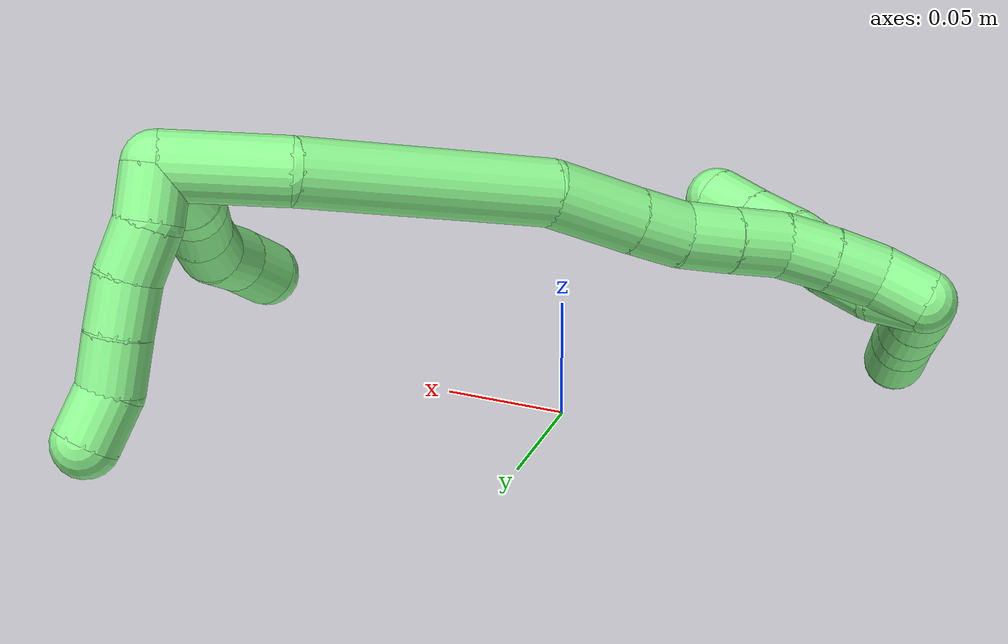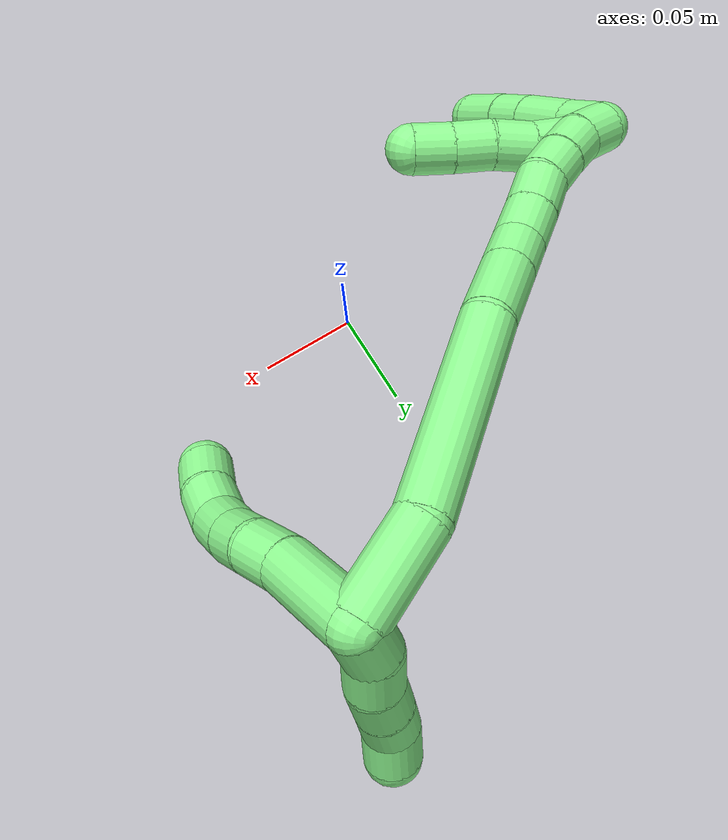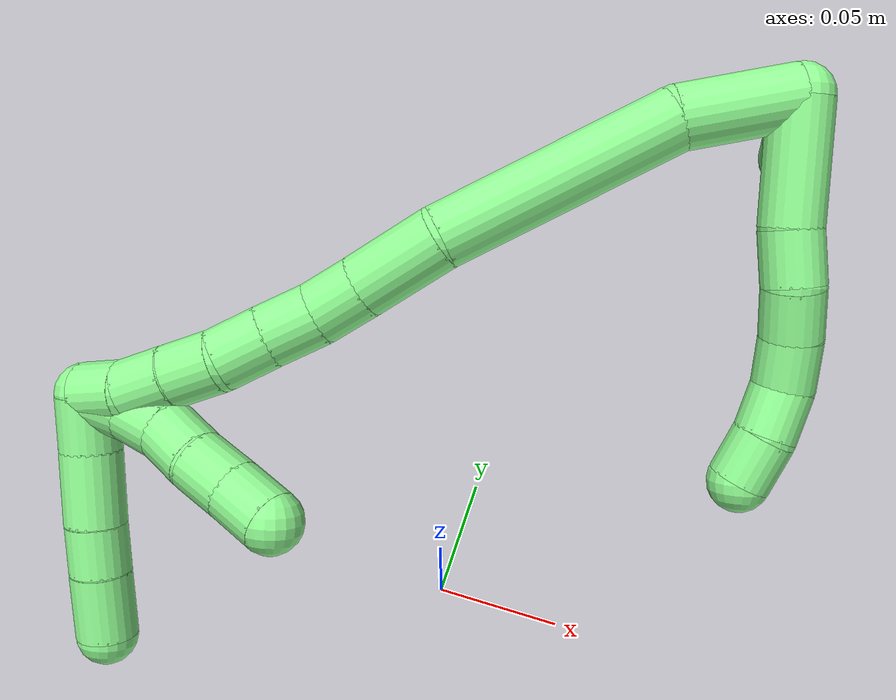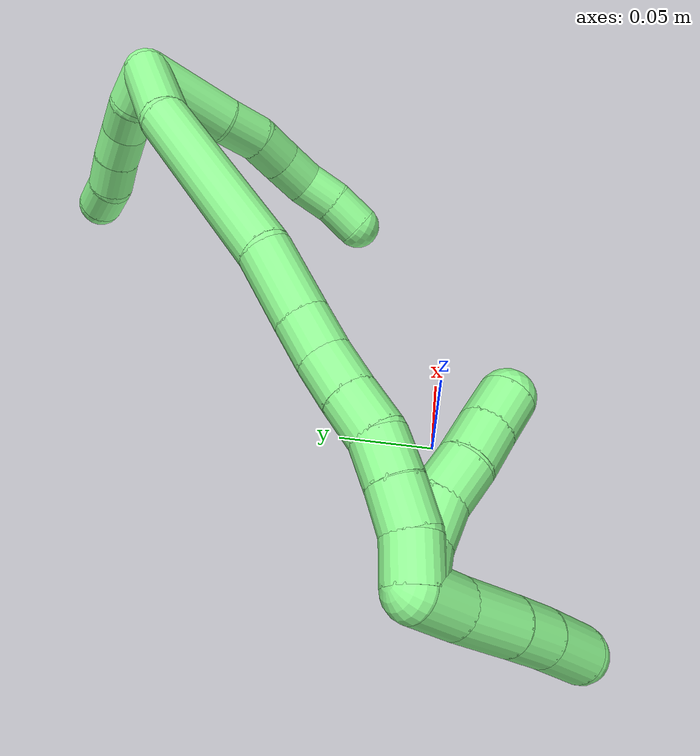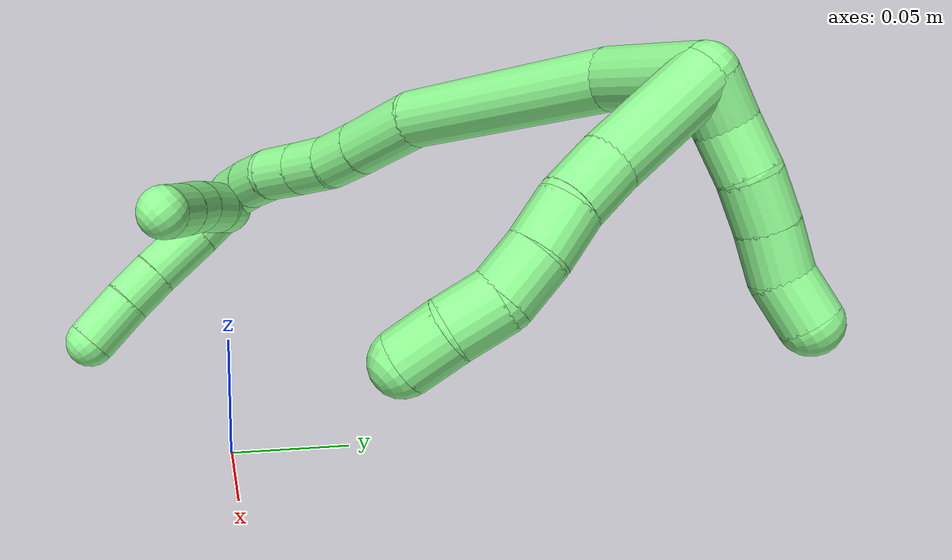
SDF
<sdf version="1.7">
 <world name="default">
  <model name="13">
   <static>0</static>
   <link name="13">
    <collision name="collision-cylinder-e_1_2_8">
     <pose>2.1e-05 -1.4e-05 -0.024137 3.14099 0.00089 1.95472</pose>
     <geometry><cylinder><radius>0.0125</radius><length>0.048273</length></cylinder></geometry>
     <surface>
      <friction><ode><mu>1.16</mu><mu2>1.16</mu2><slip1>0</slip1><slip2>0</slip2></ode></friction>
      <contact><ode><kp>1e+06</kp><kd>1</kd><max_vel>0</max_vel><min_depth>0.001</min_depth></ode></contact>
     </surface>
    </collision>
    <visual name="visual-cylinder-e_1_2_8">
     <pose>2.1e-05 -1.4e-05 -0.024137 3.14099 0.00089 1.95472</pose>
     <geometry><cylinder><radius>0.0125</radius><length>0.048273</length></cylinder></geometry>
     <material><ambient>0.564706 0.984314 0.572549 1</ambient></material>
    </visual>
    <collision name="collision-cylinder-e_2_8_9">
     <pose>0.00141 0.000449 -0.058979 -3.09694 0.126907 -2.46565</pose>
     <geometry><cylinder><radius>0.0125</radius><length>0.021606</length></cylinder></geometry>
     <surface>
      <friction><ode><mu>1.16</mu><mu2>1.16</mu2><slip1>0</slip1><slip2>0</slip2></ode></friction>
      <contact><ode><kp>1e+06</kp><kd>1</kd><max_vel>0</max_vel><min_depth>0.001</min_depth></ode></contact>
     </surface>
    </collision>
    <visual name="visual-cylinder-e_2_8_9">
     <pose>0.00141 0.000449 -0.058979 -3.09694 0.126907 -2.46565</pose>
     <geometry><cylinder><radius>0.0125</radius><length>0.021606</length></cylinder></geometry>
     <material><ambient>0.564706 0.984314 0.572549 1</ambient></material>
    </visual>
    <collision name="collision-cylinder-e_3_9_10">
     <pose>0.002838 0.003327 -0.079419 -2.89995 0.006029 -0.049646</pose>
     <geometry><cylinder><radius>0.0125</radius><length>0.020054</length></cylinder></geometry>
     <surface>
      <friction><ode><mu>1.16</mu><mu2>1.16</mu2><slip1>0</slip1><slip2>0</slip2></ode></friction>
      <contact><ode><kp>1e+06</kp><kd>1</kd><max_vel>0</max_vel><min_depth>0.001</min_depth></ode></contact>
     </surface>
    </collision>
    <visual name="visual-cylinder-e_3_9_10">
     <pose>0.002838 0.003327 -0.079419 -2.89995 0.006029 -0.049646</pose>
     <geometry><cylinder><radius>0.0125</radius><length>0.020054</length></cylinder></geometry>
     <material><ambient>0.564706 0.984314 0.572549 1</ambient></material>
    </visual>
    <collision name="collision-cylinder-e_4_10_11">
     <pose>0.002002 0.007325 -0.098988 -2.98044 -0.089746 1.01497</pose>
     <geometry><cylinder><radius>0.0125</radius><length>0.020005</length></cylinder></geometry>
     <surface>
      <friction><ode><mu>1.16</mu><mu2>1.16</mu2><slip1>0</slip1><slip2>0</slip2></ode></friction>
      <contact><ode><kp>1e+06</kp><kd>1</kd><max_vel>0</max_vel><min_depth>0.001</min_depth></ode></contact>
     </surface>
    </collision>
    <visual name="visual-cylinder-e_4_10_11">
     <pose>0.002002 0.007325 -0.098988 -2.98044 -0.089746 1.01497</pose>
     <geometry><cylinder><radius>0.0125</radius><length>0.020005</length></cylinder></geometry>
     <material><ambient>0.564706 0.984314 0.572549 1</ambient></material>
    </visual>
    <collision name="collision-cylinder-e_5_11_12">
     <pose>-0.001437 0.0075 -0.118402 2.99407 -0.256694 -2.10155</pose>
     <geometry><cylinder><radius>0.0125</radius><length>0.020027</length></cylinder></geometry>
     <surface>
      <friction><ode><mu>1.16</mu><mu2>1.16</mu2><slip1>0</slip1><slip2>0</slip2></ode></friction>
      <contact><ode><kp>1e+06</kp><kd>1</kd><max_vel>0</max_vel><min_depth>0.001</min_depth></ode></contact>
     </surface>
    </collision>
    <visual name="visual-cylinder-e_5_11_12">
     <pose>-0.001437 0.0075 -0.118402 2.99407 -0.256694 -2.10155</pose>
     <geometry><cylinder><radius>0.0125</radius><length>0.020027</length></cylinder></geometry>
     <material><ambient>0.564706 0.984314 0.572549 1</ambient></material>
    </visual>
    <collision name="collision-cylinder-e_6_12_6">
     <pose>-0.008092 0.005529 -0.1371 3.08164 -0.42307 -2.86413</pose>
     <geometry><cylinder><radius>0.0125</radius><length>0.020035</length></cylinder></geometry>
     <surface>
      <friction><ode><mu>1.16</mu><mu2>1.16</mu2><slip1>0</slip1><slip2>0</slip2></ode></friction>
      <contact><ode><kp>1e+06</kp><kd>1</kd><max_vel>0</max_vel><min_depth>0.001</min_depth></ode></contact>
     </surface>
    </collision>
    <visual name="visual-cylinder-e_6_12_6">
     <pose>-0.008092 0.005529 -0.1371 3.08164 -0.42307 -2.86413</pose>
     <geometry><cylinder><radius>0.0125</radius><length>0.020035</length></cylinder></geometry>
     <material><ambient>0.564706 0.984314 0.572549 1</ambient></material>
    </visual>
    <collision name="collision-cylinder-e_1_2_13">
     <pose>-0.002354 0.009607 -0.001473 -1.72292 -0.237597 0.276338</pose>
     <geometry><cylinder><radius>0.0125</radius><length>0.02</length></cylinder></geometry>
     <surface>
      <friction><ode><mu>1.16</mu><mu2>1.16</mu2><slip1>0</slip1><slip2>0</slip2></ode></friction>
      <contact><ode><kp>1e+06</kp><kd>1</kd><max_vel>0</max_vel><min_depth>0.001</min_depth></ode></contact>
     </surface>
    </collision>
    <visual name="visual-cylinder-e_1_2_13">
     <pose>-0.002354 0.009607 -0.001473 -1.72292 -0.237597 0.276338</pose>
     <geometry><cylinder><radius>0.0125</radius><length>0.02</length></cylinder></geometry>
     <material><ambient>0.564706 0.984314 0.572549 1</ambient></material>
    </visual>
    <collision name="collision-cylinder-e_2_13_14">
     <pose>-0.004324 0.028848 -0.005597 -1.83935 0.038376 -0.05036</pose>
     <geometry><cylinder><radius>0.0125</radius><length>0.02</length></cylinder></geometry>
     <surface>
      <friction><ode><mu>1.16</mu><mu2>1.16</mu2><slip1>0</slip1><slip2>0</slip2></ode></friction>
      <contact><ode><kp>1e+06</kp><kd>1</kd><max_vel>0</max_vel><min_depth>0.001</min_depth></ode></contact>
     </surface>
    </collision>
    <visual name="visual-cylinder-e_2_13_14">
     <pose>-0.004324 0.028848 -0.005597 -1.83935 0.038376 -0.05036</pose>
     <geometry><cylinder><radius>0.0125</radius><length>0.02</length></cylinder></geometry>
     <material><ambient>0.564706 0.984314 0.572549 1</ambient></material>
    </visual>
    <collision name="collision-cylinder-e_3_14_15">
     <pose>-0.005532 0.047995 -0.010891 -1.84173 -0.159858 0.209987</pose>
     <geometry><cylinder><radius>0.0125</radius><length>0.02</length></cylinder></geometry>
     <surface>
      <friction><ode><mu>1.16</mu><mu2>1.16</mu2><slip1>0</slip1><slip2>0</slip2></ode></friction>
      <contact><ode><kp>1e+06</kp><kd>1</kd><max_vel>0</max_vel><min_depth>0.001</min_depth></ode></contact>
     </surface>
    </collision>
    <visual name="visual-cylinder-e_3_14_15">
     <pose>-0.005532 0.047995 -0.010891 -1.84173 -0.159858 0.209987</pose>
     <geometry><cylinder><radius>0.0125</radius><length>0.02</length></cylinder></geometry>
     <material><ambient>0.564706 0.984314 0.572549 1</ambient></material>
    </visual>
    <collision name="collision-cylinder-e_4_15_16">
     <pose>-0.008767 0.066801 -0.016839 -1.91255 -0.165116 0.233453</pose>
     <geometry><cylinder><radius>0.0125</radius><length>0.02</length></cylinder></geometry>
     <surface>
      <friction><ode><mu>1.16</mu><mu2>1.16</mu2><slip1>0</slip1><slip2>0</slip2></ode></friction>
      <contact><ode><kp>1e+06</kp><kd>1</kd><max_vel>0</max_vel><min_depth>0.001</min_depth></ode></contact>
     </surface>
    </collision>
    <visual name="visual-cylinder-e_4_15_16">
     <pose>-0.008767 0.066801 -0.016839 -1.91255 -0.165116 0.233453</pose>
     <geometry><cylinder><radius>0.0125</radius><length>0.02</length></cylinder></geometry>
     <material><ambient>0.564706 0.984314 0.572549 1</ambient></material>
    </visual>
    <collision name="collision-cylinder-e_5_16_5">
     <pose>-0.009612 0.085939 -0.021706 -1.72812 0.080019 -0.093695</pose>
     <geometry><cylinder><radius>0.0125</radius><length>0.02</length></cylinder></geometry>
     <surface>
      <friction><ode><mu>1.16</mu><mu2>1.16</mu2><slip1>0</slip1><slip2>0</slip2></ode></friction>
      <contact><ode><kp>1e+06</kp><kd>1</kd><max_vel>0</max_vel><min_depth>0.001</min_depth></ode></contact>
     </surface>
    </collision>
    <visual name="visual-cylinder-e_5_16_5">
     <pose>-0.009612 0.085939 -0.021706 -1.72812 0.080019 -0.093695</pose>
     <geometry><cylinder><radius>0.0125</radius><length>0.02</length></cylinder></geometry>
     <material><ambient>0.564706 0.984314 0.572549 1</ambient></material>
    </visual>
    <collision name="collision-cylinder-e_1_2_17">
     <pose>-0.021027 -0.008033 -0.005194 2.14478 -1.14384 -1.73784</pose>
     <geometry><cylinder><radius>0.0125</radius><length>0.046202</length></cylinder></geometry>
     <surface>
      <friction><ode><mu>1.16</mu><mu2>1.16</mu2><slip1>0</slip1><slip2>0</slip2></ode></friction>
      <contact><ode><kp>1e+06</kp><kd>1</kd><max_vel>0</max_vel><min_depth>0.001</min_depth></ode></contact>
     </surface>
    </collision>
    <visual name="visual-cylinder-e_1_2_17">
     <pose>-0.021027 -0.008033 -0.005194 2.14478 -1.14384 -1.73784</pose>
     <geometry><cylinder><radius>0.0125</radius><length>0.046202</length></cylinder></geometry>
     <material><ambient>0.564706 0.984314 0.572549 1</ambient></material>
    </visual>
    <collision name="collision-cylinder-e_2_17_18">
     <pose>-0.080989 -0.032593 -0.03405 2.53192 -0.932884 -2.02451</pose>
     <geometry><cylinder><radius>0.0125</radius><length>0.09693</length></cylinder></geometry>
     <surface>
      <friction><ode><mu>1.16</mu><mu2>1.16</mu2><slip1>0</slip1><slip2>0</slip2></ode></friction>
      <contact><ode><kp>1e+06</kp><kd>1</kd><max_vel>0</max_vel><min_depth>0.001</min_depth></ode></contact>
     </surface>
    </collision>
    <visual name="visual-cylinder-e_2_17_18">
     <pose>-0.080989 -0.032593 -0.03405 2.53192 -0.932884 -2.02451</pose>
     <geometry><cylinder><radius>0.0125</radius><length>0.09693</length></cylinder></geometry>
     <material><ambient>0.564706 0.984314 0.572549 1</ambient></material>
    </visual>
    <collision name="collision-cylinder-e_3_18_19">
     <pose>-0.134114 -0.051442 -0.067597 2.9108 -0.94977 -2.69811</pose>
     <geometry><cylinder><radius>0.0125</radius><length>0.0349</length></cylinder></geometry>
     <surface>
      <friction><ode><mu>1.16</mu><mu2>1.16</mu2><slip1>0</slip1><slip2>0</slip2></ode></friction>
      <contact><ode><kp>1e+06</kp><kd>1</kd><max_vel>0</max_vel><min_depth>0.001</min_depth></ode></contact>
     </surface>
    </collision>
    <visual name="visual-cylinder-e_3_18_19">
     <pose>-0.134114 -0.051442 -0.067597 2.9108 -0.94977 -2.69811</pose>
     <geometry><cylinder><radius>0.0125</radius><length>0.0349</length></cylinder></geometry>
     <material><ambient>0.564706 0.984314 0.572549 1</ambient></material>
    </visual>
    <collision name="collision-cylinder-e_4_19_20">
     <pose>-0.156561 -0.055358 -0.083077 2.86414 -0.956818 -2.6156</pose>
     <geometry><cylinder><radius>0.0125</radius><length>0.020198</length></cylinder></geometry>
     <surface>
      <friction><ode><mu>1.16</mu><mu2>1.16</mu2><slip1>0</slip1><slip2>0</slip2></ode></friction>
      <contact><ode><kp>1e+06</kp><kd>1</kd><max_vel>0</max_vel><min_depth>0.001</min_depth></ode></contact>
     </surface>
    </collision>
    <visual name="visual-cylinder-e_4_19_20">
     <pose>-0.156561 -0.055358 -0.083077 2.86414 -0.956818 -2.6156</pose>
     <geometry><cylinder><radius>0.0125</radius><length>0.020198</length></cylinder></geometry>
     <material><ambient>0.564706 0.984314 0.572549 1</ambient></material>
    </visual>
    <collision name="collision-cylinder-e_5_20_21">
     <pose>-0.173454 -0.060146 -0.093474 2.55458 -0.982147 -2.11275</pose>
     <geometry><cylinder><radius>0.0125</radius><length>0.020772</length></cylinder></geometry>
     <surface>
      <friction><ode><mu>1.16</mu><mu2>1.16</mu2><slip1>0</slip1><slip2>0</slip2></ode></friction>
      <contact><ode><kp>1e+06</kp><kd>1</kd><max_vel>0</max_vel><min_depth>0.001</min_depth></ode></contact>
     </surface>
    </collision>
    <visual name="visual-cylinder-e_5_20_21">
     <pose>-0.173454 -0.060146 -0.093474 2.55458 -0.982147 -2.11275</pose>
     <geometry><cylinder><radius>0.0125</radius><length>0.020772</length></cylinder></geometry>
     <material><ambient>0.564706 0.984314 0.572549 1</ambient></material>
    </visual>
    <collision name="collision-cylinder-e_6_21_22">
     <pose>-0.19049 -0.066747 -0.103219 2.5382 -0.950144 -2.0534</pose>
     <geometry><cylinder><radius>0.0125</radius><length>0.020647</length></cylinder></geometry>
     <surface>
      <friction><ode><mu>1.16</mu><mu2>1.16</mu2><slip1>0</slip1><slip2>0</slip2></ode></friction>
      <contact><ode><kp>1e+06</kp><kd>1</kd><max_vel>0</max_vel><min_depth>0.001</min_depth></ode></contact>
     </surface>
    </collision>
    <visual name="visual-cylinder-e_6_21_22">
     <pose>-0.19049 -0.066747 -0.103219 2.5382 -0.950144 -2.0534</pose>
     <geometry><cylinder><radius>0.0125</radius><length>0.020647</length></cylinder></geometry>
     <material><ambient>0.564706 0.984314 0.572549 1</ambient></material>
    </visual>
    <collision name="collision-cylinder-e_7_22_23">
     <pose>-0.208136 -0.071513 -0.111859 2.78897 -1.16819 -2.61507</pose>
     <geometry><cylinder><radius>0.0125</radius><length>0.020103</length></cylinder></geometry>
     <surface>
      <friction><ode><mu>1.16</mu><mu2>1.16</mu2><slip1>0</slip1><slip2>0</slip2></ode></friction>
      <contact><ode><kp>1e+06</kp><kd>1</kd><max_vel>0</max_vel><min_depth>0.001</min_depth></ode></contact>
     </surface>
    </collision>
    <visual name="visual-cylinder-e_7_22_23">
     <pose>-0.208136 -0.071513 -0.111859 2.78897 -1.16819 -2.61507</pose>
     <geometry><cylinder><radius>0.0125</radius><length>0.020103</length></cylinder></geometry>
     <material><ambient>0.564706 0.984314 0.572549 1</ambient></material>
    </visual>
    <collision name="collision-cylinder-e_8_23_24">
     <pose>-0.22676 -0.073638 -0.119291 2.9397 -1.18451 -2.84275</pose>
     <geometry><cylinder><radius>0.0125</radius><length>0.020244</length></cylinder></geometry>
     <surface>
      <friction><ode><mu>1.16</mu><mu2>1.16</mu2><slip1>0</slip1><slip2>0</slip2></ode></friction>
      <contact><ode><kp>1e+06</kp><kd>1</kd><max_vel>0</max_vel><min_depth>0.001</min_depth></ode></contact>
     </surface>
    </collision>
    <visual name="visual-cylinder-e_8_23_24">
     <pose>-0.22676 -0.073638 -0.119291 2.9397 -1.18451 -2.84275</pose>
     <geometry><cylinder><radius>0.0125</radius><length>0.020244</length></cylinder></geometry>
     <material><ambient>0.564706 0.984314 0.572549 1</ambient></material>
    </visual>
    <collision name="collision-cylinder-e_9_24_1">
     <pose>-0.24597 -0.073462 -0.124587 -2.59904 -1.38762 2.49619</pose>
     <geometry><cylinder><radius>0.0125</radius><length>0.020003</length></cylinder></geometry>
     <surface>
      <friction><ode><mu>1.16</mu><mu2>1.16</mu2><slip1>0</slip1><slip2>0</slip2></ode></friction>
      <contact><ode><kp>1e+06</kp><kd>1</kd><max_vel>0</max_vel><min_depth>0.001</min_depth></ode></contact>
     </surface>
    </collision>
    <visual name="visual-cylinder-e_9_24_1">
     <pose>-0.24597 -0.073462 -0.124587 -2.59904 -1.38762 2.49619</pose>
     <geometry><cylinder><radius>0.0125</radius><length>0.020003</length></cylinder></geometry>
     <material><ambient>0.564706 0.984314 0.572549 1</ambient></material>
    </visual>
    <collision name="collision-cylinder-e_1_1_25">
     <pose>-0.2554 -0.071552 -0.137324 -3.05505 0.03602 -0.788476</pose>
     <geometry><cylinder><radius>0.0125</radius><length>0.022452</length></cylinder></geometry>
     <surface>
      <friction><ode><mu>1.16</mu><mu2>1.16</mu2><slip1>0</slip1><slip2>0</slip2></ode></friction>
      <contact><ode><kp>1e+06</kp><kd>1</kd><max_vel>0</max_vel><min_depth>0.001</min_depth></ode></contact>
     </surface>
    </collision>
    <visual name="visual-cylinder-e_1_1_25">
     <pose>-0.2554 -0.071552 -0.137324 -3.05505 0.03602 -0.788476</pose>
     <geometry><cylinder><radius>0.0125</radius><length>0.022452</length></cylinder></geometry>
     <material><ambient>0.564706 0.984314 0.572549 1</ambient></material>
    </visual>
    <collision name="collision-cylinder-e_2_25_26">
     <pose>-0.254087 -0.069973 -0.163548 -3.10109 0.060293 -1.95861</pose>
     <geometry><cylinder><radius>0.0125</radius><length>0.030174</length></cylinder></geometry>
     <surface>
      <friction><ode><mu>1.16</mu><mu2>1.16</mu2><slip1>0</slip1><slip2>0</slip2></ode></friction>
      <contact><ode><kp>1e+06</kp><kd>1</kd><max_vel>0</max_vel><min_depth>0.001</min_depth></ode></contact>
     </surface>
    </collision>
    <visual name="visual-cylinder-e_2_25_26">
     <pose>-0.254087 -0.069973 -0.163548 -3.10109 0.060293 -1.95861</pose>
     <geometry><cylinder><radius>0.0125</radius><length>0.030174</length></cylinder></geometry>
     <material><ambient>0.564706 0.984314 0.572549 1</ambient></material>
    </visual>
    <collision name="collision-cylinder-e_3_26_27">
     <pose>-0.252546 -0.068522 -0.1886 -3.05773 0.062813 -1.28548</pose>
     <geometry><cylinder><radius>0.0125</radius><length>0.020119</length></cylinder></geometry>
     <surface>
      <friction><ode><mu>1.16</mu><mu2>1.16</mu2><slip1>0</slip1><slip2>0</slip2></ode></friction>
      <contact><ode><kp>1e+06</kp><kd>1</kd><max_vel>0</max_vel><min_depth>0.001</min_depth></ode></contact>
     </surface>
    </collision>
    <visual name="visual-cylinder-e_3_26_27">
     <pose>-0.252546 -0.068522 -0.1886 -3.05773 0.062813 -1.28548</pose>
     <geometry><cylinder><radius>0.0125</radius><length>0.020119</length></cylinder></geometry>
     <material><ambient>0.564706 0.984314 0.572549 1</ambient></material>
    </visual>
    <collision name="collision-cylinder-e_4_27_4">
     <pose>-0.251374 -0.065904 -0.212104 -3.01073 0.03967 -0.587966</pose>
     <geometry><cylinder><radius>0.0125</radius><length>0.027255</length></cylinder></geometry>
     <surface>
      <friction><ode><mu>1.16</mu><mu2>1.16</mu2><slip1>0</slip1><slip2>0</slip2></ode></friction>
      <contact><ode><kp>1e+06</kp><kd>1</kd><max_vel>0</max_vel><min_depth>0.001</min_depth></ode></contact>
     </surface>
    </collision>
    <visual name="visual-cylinder-e_4_27_4">
     <pose>-0.251374 -0.065904 -0.212104 -3.01073 0.03967 -0.587966</pose>
     <geometry><cylinder><radius>0.0125</radius><length>0.027255</length></cylinder></geometry>
     <material><ambient>0.564706 0.984314 0.572549 1</ambient></material>
    </visual>
    <collision name="collision-cylinder-e_1_1_28">
     <pose>-0.246117 -0.071754 -0.128506 -2.82695 1.32019 -2.73843</pose>
     <geometry><cylinder><radius>0.0125</radius><length>0.02</length></cylinder></geometry>
     <surface>
      <friction><ode><mu>1.16</mu><mu2>1.16</mu2><slip1>0</slip1><slip2>0</slip2></ode></friction>
      <contact><ode><kp>1e+06</kp><kd>1</kd><max_vel>0</max_vel><min_depth>0.001</min_depth></ode></contact>
     </surface>
    </collision>
    <visual name="visual-cylinder-e_1_1_28">
     <pose>-0.246117 -0.071754 -0.128506 -2.82695 1.32019 -2.73843</pose>
     <geometry><cylinder><radius>0.0125</radius><length>0.02</length></cylinder></geometry>
     <material><ambient>0.564706 0.984314 0.572549 1</ambient></material>
    </visual>
    <collision name="collision-cylinder-e_2_28_29">
     <pose>-0.226984 -0.072804 -0.133601 2.55554 1.23601 2.33886</pose>
     <geometry><cylinder><radius>0.0125</radius><length>0.02</length></cylinder></geometry>
     <surface>
      <friction><ode><mu>1.16</mu><mu2>1.16</mu2><slip1>0</slip1><slip2>0</slip2></ode></friction>
      <contact><ode><kp>1e+06</kp><kd>1</kd><max_vel>0</max_vel><min_depth>0.001</min_depth></ode></contact>
     </surface>
    </collision>
    <visual name="visual-cylinder-e_2_28_29">
     <pose>-0.226984 -0.072804 -0.133601 2.55554 1.23601 2.33886</pose>
     <geometry><cylinder><radius>0.0125</radius><length>0.02</length></cylinder></geometry>
     <material><ambient>0.564706 0.984314 0.572549 1</ambient></material>
    </visual>
    <collision name="collision-cylinder-e_3_29_30">
     <pose>-0.20902 -0.077715 -0.140563 2.5094 1.01973 2.08311</pose>
     <geometry><cylinder><radius>0.0125</radius><length>0.02</length></cylinder></geometry>
     <surface>
      <friction><ode><mu>1.16</mu><mu2>1.16</mu2><slip1>0</slip1><slip2>0</slip2></ode></friction>
      <contact><ode><kp>1e+06</kp><kd>1</kd><max_vel>0</max_vel><min_depth>0.001</min_depth></ode></contact>
     </surface>
    </collision>
    <visual name="visual-cylinder-e_3_29_30">
     <pose>-0.20902 -0.077715 -0.140563 2.5094 1.01973 2.08311</pose>
     <geometry><cylinder><radius>0.0125</radius><length>0.02</length></cylinder></geometry>
     <material><ambient>0.564706 0.984314 0.572549 1</ambient></material>
    </visual>
    <collision name="collision-cylinder-e_4_30_31">
     <pose>-0.191611 -0.082562 -0.149019 2.749 1.09493 2.51096</pose>
     <geometry><cylinder><radius>0.0125</radius><length>0.02</length></cylinder></geometry>
     <surface>
      <friction><ode><mu>1.16</mu><mu2>1.16</mu2><slip1>0</slip1><slip2>0</slip2></ode></friction>
      <contact><ode><kp>1e+06</kp><kd>1</kd><max_vel>0</max_vel><min_depth>0.001</min_depth></ode></contact>
     </surface>
    </collision>
    <visual name="visual-cylinder-e_4_30_31">
     <pose>-0.191611 -0.082562 -0.149019 2.749 1.09493 2.51096</pose>
     <geometry><cylinder><radius>0.0125</radius><length>0.02</length></cylinder></geometry>
     <material><ambient>0.564706 0.984314 0.572549 1</ambient></material>
    </visual>
    <collision name="collision-cylinder-e_5_31_3">
     <pose>-0.173911 -0.086485 -0.157453 2.66469 1.0782 2.36967</pose>
     <geometry><cylinder><radius>0.0125</radius><length>0.02</length></cylinder></geometry>
     <surface>
      <friction><ode><mu>1.16</mu><mu2>1.16</mu2><slip1>0</slip1><slip2>0</slip2></ode></friction>
      <contact><ode><kp>1e+06</kp><kd>1</kd><max_vel>0</max_vel><min_depth>0.001</min_depth></ode></contact>
     </surface>
    </collision>
    <visual name="visual-cylinder-e_5_31_3">
     <pose>-0.173911 -0.086485 -0.157453 2.66469 1.0782 2.36967</pose>
     <geometry><cylinder><radius>0.0125</radius><length>0.02</length></cylinder></geometry>
     <material><ambient>0.564706 0.984314 0.572549 1</ambient></material>
    </visual>
    <collision name="collision-sphere-3">
     <pose>-0.1651 -0.088656 -0.161655 0 -0 0</pose>
     <geometry><sphere><radius>0.0125</radius></sphere></geometry>
     <surface>
      <friction><ode><mu>1.16</mu><mu2>1.16</mu2><slip1>0</slip1><slip2>0</slip2></ode></friction>
      <contact><ode><kp>1e+06</kp><kd>1</kd><max_vel>0</max_vel><min_depth>0.001</min_depth></ode></contact>
     </surface>
    </collision>
    <visual name="visual-sphere-3">
     <pose>-0.1651 -0.088656 -0.161655 0 -0 0</pose>
     <geometry><sphere><radius>0.0125</radius></sphere></geometry>
     <material><ambient>0.564706 0.984314 0.572549 1</ambient></material>
    </visual>
    <collision name="collision-sphere-31">
     <pose>-0.182722 -0.084315 -0.153252 0 -0 0</pose>
     <geometry><sphere><radius>0.0125</radius></sphere></geometry>
     <surface>
      <friction><ode><mu>1.16</mu><mu2>1.16</mu2><slip1>0</slip1><slip2>0</slip2></ode></friction>
      <contact><ode><kp>1e+06</kp><kd>1</kd><max_vel>0</max_vel><min_depth>0.001</min_depth></ode></contact>
     </surface>
    </collision>
    <visual name="visual-sphere-31">
     <pose>-0.182722 -0.084315 -0.153252 0 -0 0</pose>
     <geometry><sphere><radius>0.0125</radius></sphere></geometry>
     <material><ambient>0.564706 0.984314 0.572549 1</ambient></material>
    </visual>
    <collision name="collision-sphere-30">
     <pose>-0.2005 -0.080809 -0.144787 0 -0 0</pose>
     <geometry><sphere><radius>0.0125</radius></sphere></geometry>
     <surface>
      <friction><ode><mu>1.16</mu><mu2>1.16</mu2><slip1>0</slip1><slip2>0</slip2></ode></friction>
      <contact><ode><kp>1e+06</kp><kd>1</kd><max_vel>0</max_vel><min_depth>0.001</min_depth></ode></contact>
     </surface>
    </collision>
    <visual name="visual-sphere-30">
     <pose>-0.2005 -0.080809 -0.144787 0 -0 0</pose>
     <geometry><sphere><radius>0.0125</radius></sphere></geometry>
     <material><ambient>0.564706 0.984314 0.572549 1</ambient></material>
    </visual>
    <collision name="collision-sphere-29">
     <pose>-0.217539 -0.074621 -0.136339 0 -0 0</pose>
     <geometry><sphere><radius>0.0125</radius></sphere></geometry>
     <surface>
      <friction><ode><mu>1.16</mu><mu2>1.16</mu2><slip1>0</slip1><slip2>0</slip2></ode></friction>
      <contact><ode><kp>1e+06</kp><kd>1</kd><max_vel>0</max_vel><min_depth>0.001</min_depth></ode></contact>
     </surface>
    </collision>
    <visual name="visual-sphere-29">
     <pose>-0.217539 -0.074621 -0.136339 0 -0 0</pose>
     <geometry><sphere><radius>0.0125</radius></sphere></geometry>
     <material><ambient>0.564706 0.984314 0.572549 1</ambient></material>
    </visual>
    <collision name="collision-sphere-28">
     <pose>-0.236429 -0.070987 -0.130864 0 -0 0</pose>
     <geometry><sphere><radius>0.0125</radius></sphere></geometry>
     <surface>
      <friction><ode><mu>1.16</mu><mu2>1.16</mu2><slip1>0</slip1><slip2>0</slip2></ode></friction>
      <contact><ode><kp>1e+06</kp><kd>1</kd><max_vel>0</max_vel><min_depth>0.001</min_depth></ode></contact>
     </surface>
    </collision>
    <visual name="visual-sphere-28">
     <pose>-0.236429 -0.070987 -0.130864 0 -0 0</pose>
     <geometry><sphere><radius>0.0125</radius></sphere></geometry>
     <material><ambient>0.564706 0.984314 0.572549 1</ambient></material>
    </visual>
    <collision name="collision-sphere-4">
     <pose>-0.250834 -0.064127 -0.225605 0 -0 0</pose>
     <geometry><sphere><radius>0.0125</radius></sphere></geometry>
     <surface>
      <friction><ode><mu>1.16</mu><mu2>1.16</mu2><slip1>0</slip1><slip2>0</slip2></ode></friction>
      <contact><ode><kp>1e+06</kp><kd>1</kd><max_vel>0</max_vel><min_depth>0.001</min_depth></ode></contact>
     </surface>
    </collision>
    <visual name="visual-sphere-4">
     <pose>-0.250834 -0.064127 -0.225605 0 -0 0</pose>
     <geometry><sphere><radius>0.0125</radius></sphere></geometry>
     <material><ambient>0.564706 0.984314 0.572549 1</ambient></material>
    </visual>
    <collision name="collision-sphere-27">
     <pose>-0.251915 -0.067681 -0.198604 0 -0 0</pose>
     <geometry><sphere><radius>0.0125</radius></sphere></geometry>
     <surface>
      <friction><ode><mu>1.16</mu><mu2>1.16</mu2><slip1>0</slip1><slip2>0</slip2></ode></friction>
      <contact><ode><kp>1e+06</kp><kd>1</kd><max_vel>0</max_vel><min_depth>0.001</min_depth></ode></contact>
     </surface>
    </collision>
    <visual name="visual-sphere-27">
     <pose>-0.251915 -0.067681 -0.198604 0 -0 0</pose>
     <geometry><sphere><radius>0.0125</radius></sphere></geometry>
     <material><ambient>0.564706 0.984314 0.572549 1</ambient></material>
    </visual>
    <collision name="collision-sphere-26">
     <pose>-0.253178 -0.069363 -0.178595 0 -0 0</pose>
     <geometry><sphere><radius>0.0125</radius></sphere></geometry>
     <surface>
      <friction><ode><mu>1.16</mu><mu2>1.16</mu2><slip1>0</slip1><slip2>0</slip2></ode></friction>
      <contact><ode><kp>1e+06</kp><kd>1</kd><max_vel>0</max_vel><min_depth>0.001</min_depth></ode></contact>
     </surface>
    </collision>
    <visual name="visual-sphere-26">
     <pose>-0.253178 -0.069363 -0.178595 0 -0 0</pose>
     <geometry><sphere><radius>0.0125</radius></sphere></geometry>
     <material><ambient>0.564706 0.984314 0.572549 1</ambient></material>
    </visual>
    <collision name="collision-sphere-25">
     <pose>-0.254996 -0.070582 -0.148501 0 -0 0</pose>
     <geometry><sphere><radius>0.0125</radius></sphere></geometry>
     <surface>
      <friction><ode><mu>1.16</mu><mu2>1.16</mu2><slip1>0</slip1><slip2>0</slip2></ode></friction>
      <contact><ode><kp>1e+06</kp><kd>1</kd><max_vel>0</max_vel><min_depth>0.001</min_depth></ode></contact>
     </surface>
    </collision>
    <visual name="visual-sphere-25">
     <pose>-0.254996 -0.070582 -0.148501 0 -0 0</pose>
     <geometry><sphere><radius>0.0125</radius></sphere></geometry>
     <material><ambient>0.564706 0.984314 0.572549 1</ambient></material>
    </visual>
    <collision name="collision-sphere-1">
     <pose>-0.255804 -0.072522 -0.126147 0 -0 0</pose>
     <geometry><sphere><radius>0.0125</radius></sphere></geometry>
     <surface>
      <friction><ode><mu>1.16</mu><mu2>1.16</mu2><slip1>0</slip1><slip2>0</slip2></ode></friction>
      <contact><ode><kp>1e+06</kp><kd>1</kd><max_vel>0</max_vel><min_depth>0.001</min_depth></ode></contact>
     </surface>
    </collision>
    <visual name="visual-sphere-1">
     <pose>-0.255804 -0.072522 -0.126147 0 -0 0</pose>
     <geometry><sphere><radius>0.0125</radius></sphere></geometry>
     <material><ambient>0.564706 0.984314 0.572549 1</ambient></material>
    </visual>
    <collision name="collision-sphere-24">
     <pose>-0.236136 -0.074403 -0.123027 0 -0 0</pose>
     <geometry><sphere><radius>0.0125</radius></sphere></geometry>
     <surface>
      <friction><ode><mu>1.16</mu><mu2>1.16</mu2><slip1>0</slip1><slip2>0</slip2></ode></friction>
      <contact><ode><kp>1e+06</kp><kd>1</kd><max_vel>0</max_vel><min_depth>0.001</min_depth></ode></contact>
     </surface>
    </collision>
    <visual name="visual-sphere-24">
     <pose>-0.236136 -0.074403 -0.123027 0 -0 0</pose>
     <geometry><sphere><radius>0.0125</radius></sphere></geometry>
     <material><ambient>0.564706 0.984314 0.572549 1</ambient></material>
    </visual>
    <collision name="collision-sphere-23">
     <pose>-0.217384 -0.072874 -0.115555 0 -0 0</pose>
     <geometry><sphere><radius>0.0125</radius></sphere></geometry>
     <surface>
      <friction><ode><mu>1.16</mu><mu2>1.16</mu2><slip1>0</slip1><slip2>0</slip2></ode></friction>
      <contact><ode><kp>1e+06</kp><kd>1</kd><max_vel>0</max_vel><min_depth>0.001</min_depth></ode></contact>
     </surface>
    </collision>
    <visual name="visual-sphere-23">
     <pose>-0.217384 -0.072874 -0.115555 0 -0 0</pose>
     <geometry><sphere><radius>0.0125</radius></sphere></geometry>
     <material><ambient>0.564706 0.984314 0.572549 1</ambient></material>
    </visual>
    <collision name="collision-sphere-22">
     <pose>-0.198888 -0.070153 -0.108163 0 -0 0</pose>
     <geometry><sphere><radius>0.0125</radius></sphere></geometry>
     <surface>
      <friction><ode><mu>1.16</mu><mu2>1.16</mu2><slip1>0</slip1><slip2>0</slip2></ode></friction>
      <contact><ode><kp>1e+06</kp><kd>1</kd><max_vel>0</max_vel><min_depth>0.001</min_depth></ode></contact>
     </surface>
    </collision>
    <visual name="visual-sphere-22">
     <pose>-0.198888 -0.070153 -0.108163 0 -0 0</pose>
     <geometry><sphere><radius>0.0125</radius></sphere></geometry>
     <material><ambient>0.564706 0.984314 0.572549 1</ambient></material>
    </visual>
    <collision name="collision-sphere-21">
     <pose>-0.182092 -0.06334 -0.098276 0 -0 0</pose>
     <geometry><sphere><radius>0.0125</radius></sphere></geometry>
     <surface>
      <friction><ode><mu>1.16</mu><mu2>1.16</mu2><slip1>0</slip1><slip2>0</slip2></ode></friction>
      <contact><ode><kp>1e+06</kp><kd>1</kd><max_vel>0</max_vel><min_depth>0.001</min_depth></ode></contact>
     </surface>
    </collision>
    <visual name="visual-sphere-21">
     <pose>-0.182092 -0.06334 -0.098276 0 -0 0</pose>
     <geometry><sphere><radius>0.0125</radius></sphere></geometry>
     <material><ambient>0.564706 0.984314 0.572549 1</ambient></material>
    </visual>
    <collision name="collision-sphere-12">
     <pose>-0.003979 0.006076 -0.127982 0 -0 0</pose>
     <geometry><sphere><radius>0.0125</radius></sphere></geometry>
     <surface>
      <friction><ode><mu>1.16</mu><mu2>1.16</mu2><slip1>0</slip1><slip2>0</slip2></ode></friction>
      <contact><ode><kp>1e+06</kp><kd>1</kd><max_vel>0</max_vel><min_depth>0.001</min_depth></ode></contact>
     </surface>
    </collision>
    <visual name="visual-sphere-12">
     <pose>-0.003979 0.006076 -0.127982 0 -0 0</pose>
     <geometry><sphere><radius>0.0125</radius></sphere></geometry>
     <material><ambient>0.564706 0.984314 0.572549 1</ambient></material>
    </visual>
    <collision name="collision-sphere-11">
     <pose>0.001105 0.008923 -0.108821 0 -0 0</pose>
     <geometry><sphere><radius>0.0125</radius></sphere></geometry>
     <surface>
      <friction><ode><mu>1.16</mu><mu2>1.16</mu2><slip1>0</slip1><slip2>0</slip2></ode></friction>
      <contact><ode><kp>1e+06</kp><kd>1</kd><max_vel>0</max_vel><min_depth>0.001</min_depth></ode></contact>
     </surface>
    </collision>
    <visual name="visual-sphere-11">
     <pose>0.001105 0.008923 -0.108821 0 -0 0</pose>
     <geometry><sphere><radius>0.0125</radius></sphere></geometry>
     <material><ambient>0.564706 0.984314 0.572549 1</ambient></material>
    </visual>
    <collision name="collision-sphere-10">
     <pose>0.002898 0.005726 -0.089155 0 -0 0</pose>
     <geometry><sphere><radius>0.0125</radius></sphere></geometry>
     <surface>
      <friction><ode><mu>1.16</mu><mu2>1.16</mu2><slip1>0</slip1><slip2>0</slip2></ode></friction>
      <contact><ode><kp>1e+06</kp><kd>1</kd><max_vel>0</max_vel><min_depth>0.001</min_depth></ode></contact>
     </surface>
    </collision>
    <visual name="visual-sphere-10">
     <pose>0.002898 0.005726 -0.089155 0 -0 0</pose>
     <geometry><sphere><radius>0.0125</radius></sphere></geometry>
     <material><ambient>0.564706 0.984314 0.572549 1</ambient></material>
    </visual>
    <collision name="collision-sphere-9">
     <pose>0.002778 0.000928 -0.069684 0 -0 0</pose>
     <geometry><sphere><radius>0.0125</radius></sphere></geometry>
     <surface>
      <friction><ode><mu>1.16</mu><mu2>1.16</mu2><slip1>0</slip1><slip2>0</slip2></ode></friction>
      <contact><ode><kp>1e+06</kp><kd>1</kd><max_vel>0</max_vel><min_depth>0.001</min_depth></ode></contact>
     </surface>
    </collision>
    <visual name="visual-sphere-9">
     <pose>0.002778 0.000928 -0.069684 0 -0 0</pose>
     <geometry><sphere><radius>0.0125</radius></sphere></geometry>
     <material><ambient>0.564706 0.984314 0.572549 1</ambient></material>
    </visual>
    <collision name="collision-sphere-2">
     <geometry><sphere><radius>0.0125</radius></sphere></geometry>
     <surface>
      <friction><ode><mu>1.16</mu><mu2>1.16</mu2><slip1>0</slip1><slip2>0</slip2></ode></friction>
      <contact><ode><kp>1e+06</kp><kd>1</kd><max_vel>0</max_vel><min_depth>0.001</min_depth></ode></contact>
     </surface>
    </collision>
    <visual name="visual-sphere-2">
     <geometry><sphere><radius>0.0125</radius></sphere></geometry>
     <material><ambient>0.564706 0.984314 0.572549 1</ambient></material>
    </visual>
    <collision name="collision-sphere-19">
     <pose>-0.148306 -0.053764 -0.077481 0 -0 0</pose>
     <geometry><sphere><radius>0.0125</radius></sphere></geometry>
     <surface>
      <friction><ode><mu>1.16</mu><mu2>1.16</mu2><slip1>0</slip1><slip2>0</slip2></ode></friction>
      <contact><ode><kp>1e+06</kp><kd>1</kd><max_vel>0</max_vel><min_depth>0.001</min_depth></ode></contact>
     </surface>
    </collision>
    <visual name="visual-sphere-19">
     <pose>-0.148306 -0.053764 -0.077481 0 -0 0</pose>
     <geometry><sphere><radius>0.0125</radius></sphere></geometry>
     <material><ambient>0.564706 0.984314 0.572549 1</ambient></material>
    </visual>
    <collision name="collision-sphere-8">
     <pose>4.3e-05 -2.9e-05 -0.048273 0 -0 0</pose>
     <geometry><sphere><radius>0.0125</radius></sphere></geometry>
     <surface>
      <friction><ode><mu>1.16</mu><mu2>1.16</mu2><slip1>0</slip1><slip2>0</slip2></ode></friction>
      <contact><ode><kp>1e+06</kp><kd>1</kd><max_vel>0</max_vel><min_depth>0.001</min_depth></ode></contact>
     </surface>
    </collision>
    <visual name="visual-sphere-8">
     <pose>4.3e-05 -2.9e-05 -0.048273 0 -0 0</pose>
     <geometry><sphere><radius>0.0125</radius></sphere></geometry>
     <material><ambient>0.564706 0.984314 0.572549 1</ambient></material>
    </visual>
    <collision name="collision-sphere-6">
     <pose>-0.012205 0.004982 -0.146217 0 -0 0</pose>
     <geometry><sphere><radius>0.0125</radius></sphere></geometry>
     <surface>
      <friction><ode><mu>1.16</mu><mu2>1.16</mu2><slip1>0</slip1><slip2>0</slip2></ode></friction>
      <contact><ode><kp>1e+06</kp><kd>1</kd><max_vel>0</max_vel><min_depth>0.001</min_depth></ode></contact>
     </surface>
    </collision>
    <visual name="visual-sphere-6">
     <pose>-0.012205 0.004982 -0.146217 0 -0 0</pose>
     <geometry><sphere><radius>0.0125</radius></sphere></geometry>
     <material><ambient>0.564706 0.984314 0.572549 1</ambient></material>
    </visual>
    <collision name="collision-sphere-13">
     <pose>-0.004707 0.019214 -0.002946 0 -0 0</pose>
     <geometry><sphere><radius>0.0125</radius></sphere></geometry>
     <surface>
      <friction><ode><mu>1.16</mu><mu2>1.16</mu2><slip1>0</slip1><slip2>0</slip2></ode></friction>
      <contact><ode><kp>1e+06</kp><kd>1</kd><max_vel>0</max_vel><min_depth>0.001</min_depth></ode></contact>
     </surface>
    </collision>
    <visual name="visual-sphere-13">
     <pose>-0.004707 0.019214 -0.002946 0 -0 0</pose>
     <geometry><sphere><radius>0.0125</radius></sphere></geometry>
     <material><ambient>0.564706 0.984314 0.572549 1</ambient></material>
    </visual>
    <collision name="collision-sphere-14">
     <pose>-0.00394 0.038483 -0.008248 0 -0 0</pose>
     <geometry><sphere><radius>0.0125</radius></sphere></geometry>
     <surface>
      <friction><ode><mu>1.16</mu><mu2>1.16</mu2><slip1>0</slip1><slip2>0</slip2></ode></friction>
      <contact><ode><kp>1e+06</kp><kd>1</kd><max_vel>0</max_vel><min_depth>0.001</min_depth></ode></contact>
     </surface>
    </collision>
    <visual name="visual-sphere-14">
     <pose>-0.00394 0.038483 -0.008248 0 -0 0</pose>
     <geometry><sphere><radius>0.0125</radius></sphere></geometry>
     <material><ambient>0.564706 0.984314 0.572549 1</ambient></material>
    </visual>
    <collision name="collision-sphere-15">
     <pose>-0.007124 0.057507 -0.013533 0 -0 0</pose>
     <geometry><sphere><radius>0.0125</radius></sphere></geometry>
     <surface>
      <friction><ode><mu>1.16</mu><mu2>1.16</mu2><slip1>0</slip1><slip2>0</slip2></ode></friction>
      <contact><ode><kp>1e+06</kp><kd>1</kd><max_vel>0</max_vel><min_depth>0.001</min_depth></ode></contact>
     </surface>
    </collision>
    <visual name="visual-sphere-15">
     <pose>-0.007124 0.057507 -0.013533 0 -0 0</pose>
     <geometry><sphere><radius>0.0125</radius></sphere></geometry>
     <material><ambient>0.564706 0.984314 0.572549 1</ambient></material>
    </visual>
    <collision name="collision-sphere-16">
     <pose>-0.010411 0.076094 -0.020145 0 -0 0</pose>
     <geometry><sphere><radius>0.0125</radius></sphere></geometry>
     <surface>
      <friction><ode><mu>1.16</mu><mu2>1.16</mu2><slip1>0</slip1><slip2>0</slip2></ode></friction>
      <contact><ode><kp>1e+06</kp><kd>1</kd><max_vel>0</max_vel><min_depth>0.001</min_depth></ode></contact>
     </surface>
    </collision>
    <visual name="visual-sphere-16">
     <pose>-0.010411 0.076094 -0.020145 0 -0 0</pose>
     <geometry><sphere><radius>0.0125</radius></sphere></geometry>
     <material><ambient>0.564706 0.984314 0.572549 1</ambient></material>
    </visual>
    <collision name="collision-sphere-5">
     <pose>-0.008812 0.095784 -0.023268 0 -0 0</pose>
     <geometry><sphere><radius>0.0125</radius></sphere></geometry>
     <surface>
      <friction><ode><mu>1.16</mu><mu2>1.16</mu2><slip1>0</slip1><slip2>0</slip2></ode></friction>
      <contact><ode><kp>1e+06</kp><kd>1</kd><max_vel>0</max_vel><min_depth>0.001</min_depth></ode></contact>
     </surface>
    </collision>
    <visual name="visual-sphere-5">
     <pose>-0.008812 0.095784 -0.023268 0 -0 0</pose>
     <geometry><sphere><radius>0.0125</radius></sphere></geometry>
     <material><ambient>0.564706 0.984314 0.572549 1</ambient></material>
    </visual>
    <collision name="collision-sphere-17">
     <pose>-0.042055 -0.016066 -0.010388 0 -0 0</pose>
     <geometry><sphere><radius>0.0125</radius></sphere></geometry>
     <surface>
      <friction><ode><mu>1.16</mu><mu2>1.16</mu2><slip1>0</slip1><slip2>0</slip2></ode></friction>
      <contact><ode><kp>1e+06</kp><kd>1</kd><max_vel>0</max_vel><min_depth>0.001</min_depth></ode></contact>
     </surface>
    </collision>
    <visual name="visual-sphere-17">
     <pose>-0.042055 -0.016066 -0.010388 0 -0 0</pose>
     <geometry><sphere><radius>0.0125</radius></sphere></geometry>
     <material><ambient>0.564706 0.984314 0.572549 1</ambient></material>
    </visual>
    <collision name="collision-sphere-18">
     <pose>-0.119922 -0.049119 -0.057712 0 -0 0</pose>
     <geometry><sphere><radius>0.0125</radius></sphere></geometry>
     <surface>
      <friction><ode><mu>1.16</mu><mu2>1.16</mu2><slip1>0</slip1><slip2>0</slip2></ode></friction>
      <contact><ode><kp>1e+06</kp><kd>1</kd><max_vel>0</max_vel><min_depth>0.001</min_depth></ode></contact>
     </surface>
    </collision>
    <visual name="visual-sphere-18">
     <pose>-0.119922 -0.049119 -0.057712 0 -0 0</pose>
     <geometry><sphere><radius>0.0125</radius></sphere></geometry>
     <material><ambient>0.564706 0.984314 0.572549 1</ambient></material>
    </visual>
    <collision name="collision-sphere-20">
     <pose>-0.164815 -0.056952 -0.088673 0 -0 0</pose>
     <geometry><sphere><radius>0.0125</radius></sphere></geometry>
     <surface>
      <friction><ode><mu>1.16</mu><mu2>1.16</mu2><slip1>0</slip1><slip2>0</slip2></ode></friction>
      <contact><ode><kp>1e+06</kp><kd>1</kd><max_vel>0</max_vel><min_depth>0.001</min_depth></ode></contact>
     </surface>
    </collision>
    <visual name="visual-sphere-20">
     <pose>-0.164815 -0.056952 -0.088673 0 -0 0</pose>
     <geometry><sphere><radius>0.0125</radius></sphere></geometry>
     <material><ambient>0.564706 0.984314 0.572549 1</ambient></material>
    </visual>
    <inertial>
     <pose>-0.113141 -0.030562 -0.083791 0 -0 0</pose>
     <mass>0.75</mass>
     <inertia><ixx>-8.5e-05</ixx><ixy>0</ixy><ixz>0</ixz><iyy>4.7e-05</iyy><iyz>0</iyz><izz>7.2e-05</izz></inertia>
    </inertial>
   </link>
   <pose>0.085946 0.165808 0.163642 -0.908286 -0.248488 0.059635</pose>
  </model>
 </world>
</sdf>
